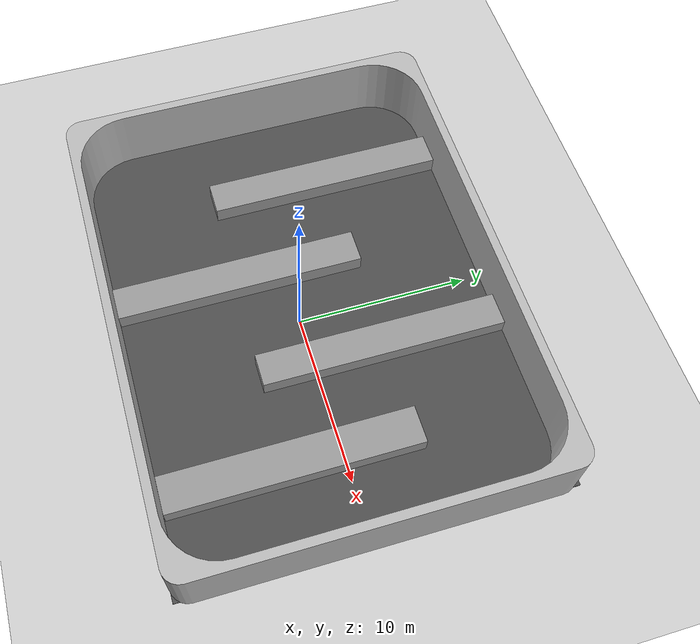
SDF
<sdf version="1.6">
 <world name="default">
  <light name="sun" type="directional">
   <pose>0 0 100 0 -0 0</pose>
   <diffuse>0.8 0.8 0.8 1</diffuse>
   <specular>0.1 0.1 0.1 1</specular>
   <attenuation>
    <range>1000</range>
    <constant>0.9</constant>
    <linear>0.01</linear>
    <quadratic>0.001</quadratic>
   </attenuation>
   <direction>-0.5 0.5 -1</direction>
  </light>
  <model name="ground_plane">
   <static>1</static>
   <link name="link">
    <collision name="collision">
     <geometry><plane><normal>0 0 1</normal><size>100 100</size></plane></geometry>
     <surface><friction><ode><mu>100</mu><mu2>50</mu2></ode></friction></surface>
    </collision>
    <visual name="visual">
     <cast_shadows>0</cast_shadows>
     <geometry><plane><normal>0 0 1</normal><size>100 100</size></plane></geometry>
     <material>
      <script><uri>file://media/materials/scripts/gazebo.material</uri><name>Gazebo/Grey</name></script>
     </material>
    </visual>
   </link>
  </model>
  <gravity>0 0 -9.8</gravity>
  <magnetic_field>6e-06 2.3e-05 -4.2e-05</magnetic_field>
  <atmosphere type="adiabatic"/>
  <physics name="default_physics" default="0" type="ode">
   <max_step_size>0.001</max_step_size>
   <real_time_factor>1</real_time_factor>
   <real_time_update_rate>1000</real_time_update_rate>
  </physics>
  <scene><ambient>0.4 0.4 0.4 1</ambient><background>0.7 0.7 0.7 1</background><shadows>1</shadows></scene>
  <spherical_coordinates>
   <surface_model>EARTH_WGS84</surface_model>
   <latitude_deg>0</latitude_deg>
   <longitude_deg>0</longitude_deg>
   <elevation>0</elevation>
   <heading_deg>0</heading_deg>
  </spherical_coordinates>
  <model name="asphalt_plane">
   <static>1</static>
   <link name="link">
    <collision name="collision"><geometry><box><size>28.54 22.04 0.1</size></box></geometry></collision>
    <visual name="visual">
     <cast_shadows>0</cast_shadows>
     <geometry><box><size>28.54 22.04 0.1</size></box></geometry>
     <material>
      <script>
       <uri>model://asphalt_plane/materials/scripts</uri>
       <uri>model://asphalt_plane/materials/textures</uri>
       <name>vrc/asphalt</name>
      </script>
     </material>
    </visual>
   </link>
   <pose>-0.719792 0.523573 0 0 -0 0</pose>
  </model>
  <model name="yard">
   <pose>-0.5 0.5 0 1.5708 -0 1.5708</pose>
   <static>1</static>
   <link name="body">
    <collision name="collision">
     <geometry><mesh><uri>model://yard/yard.stl</uri><scale>0.1 0.1 0.1</scale></mesh></geometry>
    </collision>
    <visual name="visual">
     <geometry><mesh><uri>model://yard/yard.stl</uri><scale>0.1 0.1 0.1</scale></mesh></geometry>
    </visual>
   </link>
  </model>
  <audio><device>default</device></audio>
  <model name="unit_box">
   <pose>-9.1329 4.13282 0.549989 8e-06 0 -3e-06</pose>
   <static>1</static>
   <link name="link">
    <inertial>
     <mass>1</mass>
     <inertia>
      <ixx>0.166667</ixx>
      <ixy>0</ixy>
      <ixz>0</ixz>
      <iyy>0.166667</iyy>
      <iyz>0</iyz>
      <izz>0.166667</izz>
     </inertia>
    </inertial>
    <collision name="collision"><geometry><box><size>1.94629 14.0436 1</size></box></geometry></collision>
    <visual name="visual">
     <geometry><box><size>1.94629 14.0436 1</size></box></geometry>
     <material>
      <script><name>Gazebo/Grey</name><uri>file://media/materials/scripts/gazebo.material</uri></script>
     </material>
    </visual>
   </link>
  </model>
  <model name="unit_box_1">
   <pose>2.80962 4.35673 0.525056 -0.005693 0 0</pose>
   <static>1</static>
   <link name="link">
    <inertial>
     <mass>1</mass>
     <inertia>
      <ixx>0.166667</ixx>
      <ixy>0</ixy>
      <ixz>0</ixz>
      <iyy>0.166667</iyy>
      <iyz>0</iyz>
      <izz>0.166667</izz>
     </inertia>
    </inertial>
    <collision name="collision"><geometry><box><size>1.91908 15.0331 1</size></box></geometry></collision>
    <visual name="visual">
     <geometry><box><size>1.91908 15.0331 1</size></box></geometry>
     <material>
      <script><name>Gazebo/Grey</name><uri>file://media/materials/scripts/gazebo.material</uri></script>
     </material>
    </visual>
   </link>
  </model>
  <model name="unit_box_2">
   <pose>8.26603 -2.78986 0.55 0 -0 0</pose>
   <static>1</static>
   <link name="link">
    <inertial>
     <mass>1</mass>
     <inertia>
      <ixx>0.166667</ixx>
      <ixy>0</ixy>
      <ixz>0</ixz>
      <iyy>0.166667</iyy>
      <iyz>0</iyz>
      <izz>0.166667</izz>
     </inertia>
    </inertial>
    <collision name="collision"><geometry><box><size>2.1418 14.3351 1</size></box></geometry></collision>
    <visual name="visual">
     <geometry><box><size>2.1418 14.3351 1</size></box></geometry>
     <material>
      <script><name>Gazebo/Grey</name><uri>file://media/materials/scripts/gazebo.material</uri></script>
     </material>
    </visual>
   </link>
  </model>
  <model name="unit_box_0">
   <pose>-3.5113 -2.7636 0.55 0 0 -6.8e-05</pose>
   <static>1</static>
   <link name="link">
    <inertial>
     <mass>1</mass>
     <inertia>
      <ixx>0.166667</ixx>
      <ixy>0</ixy>
      <ixz>0</ixz>
      <iyy>0.166667</iyy>
      <iyz>0</iyz>
      <izz>0.166667</izz>
     </inertia>
    </inertial>
    <collision name="collision"><geometry><box><size>1.96263 14.4648 1</size></box></geometry></collision>
    <visual name="visual">
     <geometry><box><size>1.96263 14.4648 1</size></box></geometry>
     <material>
      <script><name>Gazebo/Grey</name><uri>file://media/materials/scripts/gazebo.material</uri></script>
     </material>
    </visual>
   </link>
  </model>
 </world>
</sdf>
